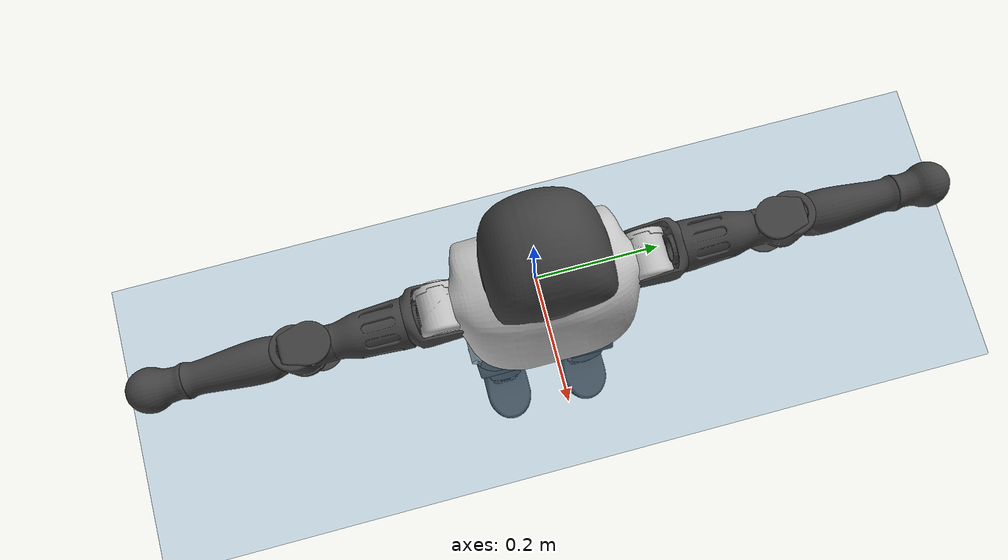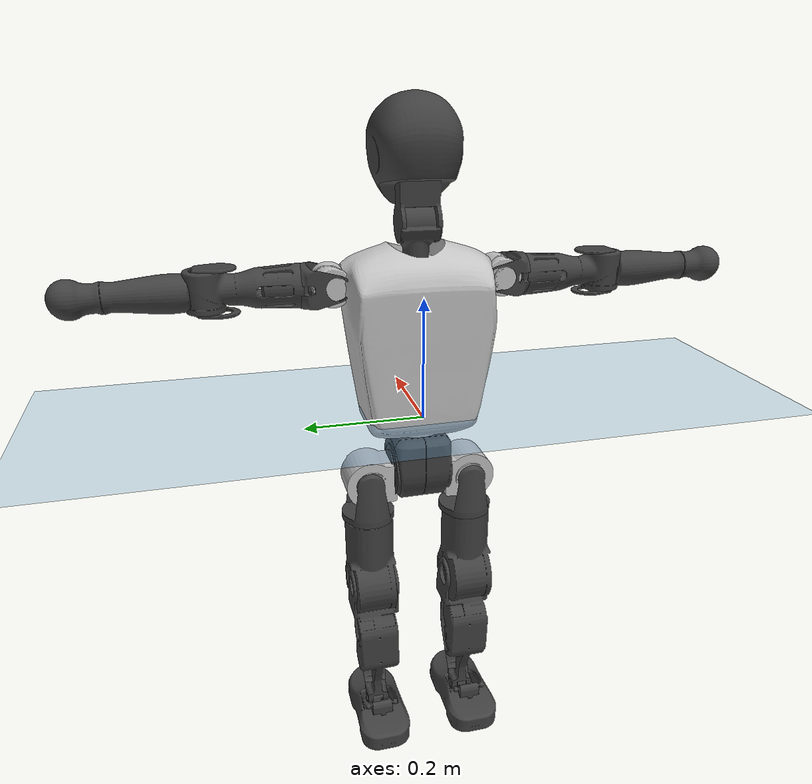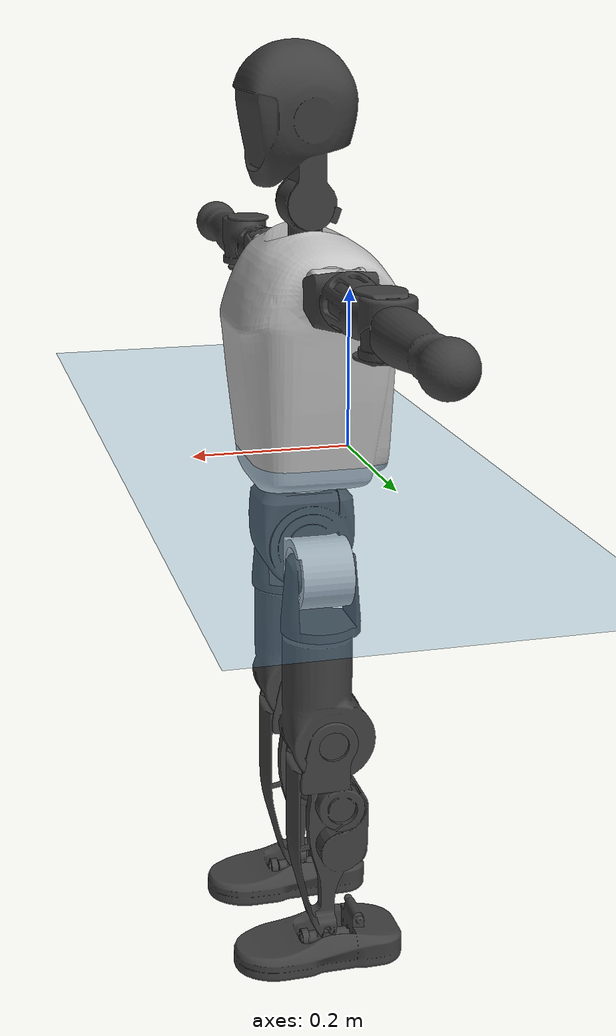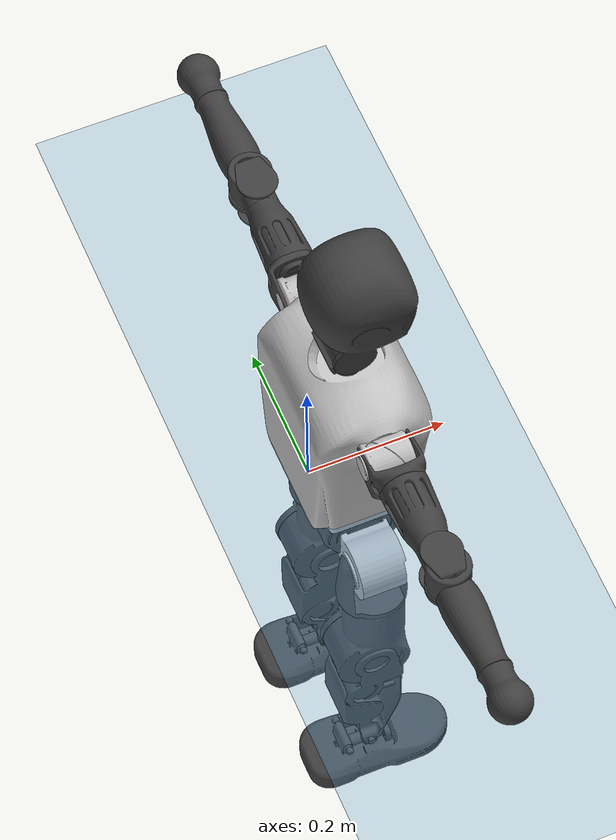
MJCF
<mujoco model="T1">
  <compiler angle="radian" assetdir="assets" balanceinertia="true" inertiafromgeom="false"/>

  <option timestep="0.005" density="1.2" viscosity="2e-05"/>

  <size nkey="1"/>

  <visual>
    <quality shadowsize="8192"/>
    <map shadowclip="0.5"/>
  </visual>

  <default>
    <default class="/">
      <joint armature="0.01" damping="0.01" frictionloss="0.1"/>
      <geom contype="0" conaffinity="0" group="1" solref="-1000 -80"/>
      <site size="0.01 0.005 0.005" group="5"/>
      <general forcelimited="true" biastype="affine" gainprm="25" biasprm="0 -25 -0.6"/>
      <default class="t1">
        <geom rgba="0.25 0.25 0.25 1"/>
        <default class="visual">
          <geom type="mesh" group="2"/>
        </default>
        <default class="collision">
          <geom group="3"/>
        </default>
        <default class="foot">
          <geom size="0.1115 0.05 0.015" type="box" condim="6" group="4" priority="1" solimp="0.015 1 0.015"/>
        </default>
        <default class="reward_collision_sphere">
          <geom group="5" rgba="1 0 0 1"/>
        </default>
      </default>
    </default>
  </default>

  <asset>
    <texture type="skybox" colorspace="auto" name="//unnamed_texture_0" builtin="gradient" rgb1="0.95 0.95 0.95" rgb2="0.95 0.95 0.95" width="100" height="600"/>
    <texture type="2d" colorspace="auto" name="texplane" builtin="checker" rgb1="0.345 0.575 0.748" rgb2="0.345 0.575 0.748" markrgb="1 1 1" width="512" height="512"/>
    <material name="MatPlane" class="/" texture="texplane" texuniform="true" texrepeat="2 2" specular="0.9"/>
    <mesh name="Trunk" class="/" file="Trunk.stl"/>
    <mesh name="H1" class="/" file="H1.stl"/>
    <mesh name="H2" class="/" file="H2.stl"/>
    <mesh name="AL1" class="/" file="AL1.stl"/>
    <mesh name="AL2" class="/" file="AL2.stl"/>
    <mesh name="AL3" class="/" file="AL3.stl"/>
    <mesh name="left_hand_link" class="/" file="left_hand_link.stl"/>
    <mesh name="AR1" class="/" file="AR1.stl"/>
    <mesh name="AR2" class="/" file="AR2.stl"/>
    <mesh name="AR3" class="/" file="AR3.stl"/>
    <mesh name="right_hand_link" class="/" file="right_hand_link.stl"/>
    <mesh name="Waist" class="/" file="Waist.stl"/>
    <mesh name="Hip_Pitch_Left" class="/" file="Hip_Pitch_Left.stl"/>
    <mesh name="Hip_Roll_Left" class="/" file="Hip_Roll_Left.stl"/>
    <mesh name="Hip_Yaw_Left" class="/" file="Hip_Yaw_Left.stl"/>
    <mesh name="Shank_Left" class="/" file="Shank_Left.stl"/>
    <mesh name="Ankle_Cross_Left" class="/" file="Ankle_Cross_Left.stl"/>
    <mesh name="left_foot_link" class="/" file="left_foot_link.stl"/>
    <mesh name="Hip_Pitch_Right" class="/" file="Hip_Pitch_Right.stl"/>
    <mesh name="Hip_Roll_Right" class="/" file="Hip_Roll_Right.stl"/>
    <mesh name="Hip_Yaw_Right" class="/" file="Hip_Yaw_Right.stl"/>
    <mesh name="Shank_Right" class="/" file="Shank_Right.stl"/>
    <mesh name="Ankle_Cross_Right" class="/" file="Ankle_Cross_Right.stl"/>
    <mesh name="right_foot_link" class="/" file="right_foot_link.stl"/>
  </asset>

  <worldbody>
    <geom name="floor" class="/" size="100 100 0.125" type="plane" group="0" material="MatPlane"/>
    <light name="toplight_shadow" class="/" pos="0 0 5" dir="0.0990148 0.0990148 -0.990148" type="directional" ambient="0.04 0.04 0.04" diffuse="0.55 0.55 0.55" specular="0.12 0.12 0.12"/>
    <light name="toplight_fill" class="/" pos="0 0 5" dir="0.0990148 0.0990148 -0.990148" type="directional" castshadow="false" ambient="0.04 0.04 0.04" diffuse="0.3 0.3 0.3" specular="0.08 0.08 0.08"/>
    <body name="trunk" childclass="t1" pos="-0.000144233 -0.00122132 -0.000129383" quat="0.999999 -0.000955557 -0.000310105 0.000720131">
      <inertial pos="0.0521762 -0.000986324 0.106004" quat="0.999977 -0.00442042 0.00157996 -0.00480741" mass="9.71432" diaginertia="0.0803607 0.0349125 0.0608028"/>
      <joint name="//unnamed_joint_0" type="free" armature="0" damping="0" frictionloss="0"/>
      <geom name="//unnamed_geom_1" class="visual" rgba="0.76 0.76 0.76 1" mesh="Trunk"/>
      <geom name="//unnamed_geom_2" class="collision" size="0.0707683 0.0943577 0.141537" pos="0.0577764 0 0.121468" type="box"/>
      <geom name="//unnamed_geom_3" class="reward_collision_sphere" size="0.108511" pos="0.0577764 0 0.101223"/>
      <geom name="//unnamed_geom_4" class="reward_collision_sphere" size="0.0141537" pos="0.0577764 0.0727224 0"/>
      <geom name="//unnamed_geom_5" class="reward_collision_sphere" size="0.0141537" pos="0.0577764 -0.0727224 0"/>
      <geom name="//unnamed_geom_6" class="reward_collision_sphere" size="0.0141537" pos="0.0577764 0.0915447 0.182202"/>
      <geom name="//unnamed_geom_7" class="reward_collision_sphere" size="0.0141537" pos="0.0577764 -0.0915447 0.182202"/>
      <site name="imu" pos="0.0118447 0.000475192 -0.0115723" size="0.00943577"/>
      <camera name="track" pos="0 -1.71112 0" quat="0.707107 0.707107 0 0" mode="trackcom"/>
      <camera name="ego_camera" pos="0.117479 0 0.425138" quat="-0.5 -0.5 0.5 0.5"/>
      <body name="H1" pos="0.0567843 -3.33433e-05 0.243305" quat="1 -8.10481e-06 -4.17558e-05 0.000116178">
        <inertial pos="-0.00133221 -0.00108884 0.0581371" quat="0.763439 -0.0147681 5.4953e-05 0.645711" mass="0.367484" diaginertia="0.000194486 0.000101182 0.000158485"/>
        <joint name="AAHead_yaw" pos="0 0 0" axis="0.00367641 0.00351218 0.999987" stiffness="0.0040148" range="-1.52088 1.57607" armature="0.0107188" damping="0.00720482" frictionloss="0.107308"/>
        <geom name="//unnamed_geom_8" class="visual" mesh="H1"/>
        <body name="H2" pos="-0.0017529 -0.00253937 0.06342" quat="1 -0.000145857 5.7597e-05 -4.75175e-05">
          <inertial pos="0.00929469 -0.00224742 0.0972982" quat="0.98799 0.105977 -0.0863507 -0.0720314" mass="0.535088" diaginertia="0.00166873 0.000854208 0.00183035"/>
          <joint name="Head_pitch" pos="0 0 0" axis="0.00196058 -0.999997 -0.00140756" range="-1.22989 0.365979" armature="0.0103008" damping="0" frictionloss="0.0900415"/>
          <geom name="//unnamed_geom_9" class="visual" mesh="H2"/>
          <geom name="//unnamed_geom_10" class="collision" size="0.0754861" pos="0.0096294 0 0.111346"/>
          <geom name="//unnamed_geom_11" class="reward_collision_sphere" size="0.0849219" pos="0.0192588 0 0.101223"/>
        </body>
      </body>
      <body name="AL1" pos="0.0554144 0.0918064 0.219136" quat="0.999999 0.000552924 -0.000724871 -0.000493385">
        <inertial pos="-0.00316657 0.0379503 2.40695e-05" quat="0.503873 0.495985 -0.504998 0.495063" mass="0.438074" diaginertia="0.00111413 0.000563484 0.000295352"/>
        <joint name="Left_Shoulder_Pitch" pos="0 0 0" axis="-0.0113591 0.999879 -0.0106719" stiffness="0.00132456" range="-3.33569 1.275" armature="0.00953269" damping="0" frictionloss="0.100642"/>
        <geom name="//unnamed_geom_12" class="visual" rgba="0.76 0.76 0.76 1" mesh="AL1"/>
        <body name="AL2" pos="-0.00140642 0.0410669 -0.000101003" quat="1 3.15293e-05 0.000128011 -5.98075e-05">
          <inertial pos="0.00327849 0.0352426 -0.00142674" quat="0.491234 0.509721 -0.489927 0.508768" mass="0.138408" diaginertia="0.000341833 0.000159935 0.000188507"/>
          <joint name="Left_Shoulder_Roll" pos="0 0 0" axis="-0.999999 -0.000141667 -0.00126122" range="-1.55087 1.74557" armature="0.0107545" damping="0.00750552" frictionloss="0.0951132"/>
          <geom name="//unnamed_geom_13" class="visual" mesh="AL2"/>
          <body name="AL3" pos="0.000770746 0.0514284 0.0013106" quat="1 -0.000432433 -0.00018053 3.08039e-05">
            <inertial pos="0.00232313 0.0703112 -0.000384614" quat="0.708956 0.705219 -0.00237516 -0.00647645" mass="0.801509" diaginertia="0.0106639 0.00571261 0.000618493"/>
            <joint name="Left_Elbow_Pitch" pos="0 0 0" axis="-0.00297115 -0.999987 0.0042255" range="-2.32619 2.26062" armature="0.0105457" damping="0.0153488" frictionloss="0.0921399"/>
            <geom name="//unnamed_geom_14" class="visual" mesh="AL3"/>
            <geom name="//unnamed_geom_15" class="collision" size="0.0283073 0.0707683" pos="0 0.0427779 0" quat="0.707105 0.707108 0 0" type="cylinder"/>
            <geom name="//unnamed_geom_16" class="reward_collision_sphere" size="0.0339688"/>
            <body name="left_hand_link" pos="0.0015414 0.124847 -0.00149167" quat="0.999999 0.000513912 -0.0011216 -0.000437043">
              <inertial pos="-0.00269178 0.0945109 0.000818277" quat="0.710765 0.703428 0.000810301 0.000943169" mass="0.273623" diaginertia="0.00652126 0.00374999 0.000236302"/>
              <joint name="Left_Elbow_Yaw" pos="0 0 0" axis="0.000568586 -0.00677689 0.999977" range="-2.44797 -0.0472122" armature="0.00989667" damping="0.0164101" frictionloss="0.0968923"/>
              <geom name="//unnamed_geom_17" class="visual" mesh="left_hand_link"/>
              <geom name="//unnamed_geom_18" class="collision" size="0.0283073 0.082563" pos="0 0.111222 0" quat="0.707105 0.707108 0 0" type="cylinder"/>
              <geom name="//unnamed_geom_19" class="reward_collision_sphere" size="0.0471788"/>
              <geom name="//unnamed_geom_20" class="reward_collision_sphere" size="0.0330252" pos="0 0.0941113 0"/>
              <geom name="//unnamed_geom_21" class="reward_collision_sphere" size="0.0330252" pos="0 0.183945 0"/>
            </body>
          </body>
        </body>
      </body>
      <body name="AR1" pos="0.0551811 -0.0927433 0.219707" quat="1 -1.49102e-06 0.000437064 2.70582e-06">
        <inertial pos="-0.0026965 -0.0410461 0.000756234" quat="0.503653 0.500713 -0.496989 0.498621" mass="0.427998" diaginertia="0.00107901 0.000572021 0.000301913"/>
        <joint name="Right_Shoulder_Pitch" pos="0 0 0" axis="-0.0115393 -0.999857 -0.0123454" range="-1.21894 3.28332" armature="0.0107219" damping="0.0098647" frictionloss="0.0896796"/>
        <geom name="//unnamed_geom_22" class="visual" rgba="0.76 0.76 0.76 1" mesh="AR1"/>
        <body name="AR2" pos="0.0021814 -0.0368944 -0.00171671" quat="0.999999 0.000717776 0.000994669 0.000860155">
          <inertial pos="0.00184205 -0.0325328 0.000996027" quat="0.509299 0.490233 -0.510697 0.489361" mass="0.12961" diaginertia="0.000331496 0.000163552 0.000189675"/>
          <joint name="Right_Shoulder_Roll" pos="0 0 0" axis="-0.999985 -0.0048915 -0.00254352" stiffness="0.000116705" range="-1.7365 1.57022" armature="0.00942023" damping="0.00849418" frictionloss="0.105565"/>
          <geom name="//unnamed_geom_23" class="visual" mesh="AR2"/>
          <body name="AR3" pos="0.00151072 -0.052312 -0.00225769" quat="1 3.79724e-06 3.55635e-05 -2.58669e-05">
            <inertial pos="-0.000268155 -0.0758874 -0.000267049" quat="0.715815 0.698248 -0.0076319 -0.000382373" mass="0.855011" diaginertia="0.0106565 0.00592286 0.000681471"/>
            <joint name="Right_Elbow_Pitch" pos="0 0 0" axis="-0.0123112 0.999912 0.00484678" range="-2.32508 2.2349" armature="0.00801934" damping="0.00550789" frictionloss="0.10412"/>
            <geom name="//unnamed_geom_24" class="visual" mesh="AR3"/>
            <geom name="//unnamed_geom_25" class="collision" size="0.0283073 0.0707683" pos="0 -0.0427779 0" quat="0.707105 0.707108 0 0" type="cylinder"/>
            <geom name="//unnamed_geom_26" class="reward_collision_sphere" size="0.0339688"/>
            <body name="right_hand_link" pos="-0.000615651 -0.125919 -0.00102527" quat="0.999999 -0.000625269 -0.000744311 0.000797589">
              <inertial pos="-0.000524384 -0.0946857 0.00370678" quat="0.706159 0.708053 -0.000113554 0.000425551" mass="0.274922" diaginertia="0.00671351 0.00367171 0.000225806"/>
              <joint name="Right_Elbow_Yaw" pos="0 0 0" axis="-0.0063741 -0.000182068 0.99998" range="-0.00398837 2.48136" armature="0.0108615" damping="0" frictionloss="0.105845"/>
              <geom name="//unnamed_geom_27" class="visual" mesh="right_hand_link"/>
              <geom name="//unnamed_geom_28" class="collision" size="0.0283073 0.082563" pos="0 -0.111222 0" quat="0.707105 0.707108 0 0" type="cylinder"/>
              <geom name="//unnamed_geom_29" class="reward_collision_sphere" size="0.0471788"/>
              <geom name="//unnamed_geom_30" class="reward_collision_sphere" size="0.0330252" pos="0 -0.0941113 0"/>
              <geom name="//unnamed_geom_31" class="reward_collision_sphere" size="0.0330252" pos="0 -0.183945 0"/>
            </body>
          </body>
        </body>
      </body>
      <body name="Waist" pos="0.0605049 -0.00411959 -0.11408" quat="1 -0.000438311 -0.000648048 0.000123057">
        <inertial pos="-0.000204348 0.000215096 0.00634549" quat="0.981281 0.00591396 -0.192477 0.00249918" mass="2.09878" diaginertia="0.00425782 0.00236478 0.00489585"/>
        <joint name="Waist" pos="0 0 0" axis="0.0132696 -6.19416e-05 0.999912" range="-1.59132 1.5151" armature="0.00964998" damping="0.0180027" frictionloss="0.107322"/>
        <geom name="//unnamed_geom_32" class="visual" mesh="Waist"/>
        <body name="Hip_Pitch_Left" pos="0.000401267 0.0919181 0.000220414" quat="1 -0.000159729 -9.30356e-05 0.000250095">
          <inertial pos="0.000871263 -0.00798125 -0.018574" quat="0.975923 0.217774 0.0116623 0.00362553" mass="0.865428" diaginertia="0.00148688 0.000690065 0.00134026"/>
          <joint name="Left_Hip_Pitch" pos="0 0 0" axis="0.0115132 0.999909 -0.00707937" range="-1.81034 1.62339" armature="0.0100483" damping="0" frictionloss="0.0919676"/>
          <geom name="//unnamed_geom_33" class="visual" rgba="0.76 0.76 0.76 1" mesh="Hip_Pitch_Left"/>
          <body name="Hip_Roll_Left" pos="0.00082982 0.00193062 -0.0184018" quat="0.999999 -0.00111024 0.000379863 0.000800968">
            <inertial pos="-0.00159496 0.000234036 -0.0552172" quat="0.706497 -0.00513667 -0.00711992 0.707661" mass="0.317112" diaginertia="0.00144502 0.000675191 0.000530061"/>
            <joint name="Left_Hip_Roll" pos="0 0 0" axis="-0.999942 -0.00526176 -0.00940429" stiffness="0.00780438" range="-1.55682 0.188748" armature="0.00888682" damping="0.0157161" frictionloss="0.0994045"/>
            <geom name="//unnamed_geom_34" class="visual" mesh="Hip_Roll_Left"/>
            <geom name="//unnamed_geom_35" class="reward_collision_sphere" size="0.0518967"/>
            <body name="Hip_Yaw_Left" pos="0.00147079 -0.00104885 -0.0846337" quat="1 -9.47035e-06 4.4374e-05 6.66264e-05">
              <inertial pos="-0.00669796 -0.00148566 -0.0904099" quat="0.706198 -0.0353105 -0.0329034 0.706368" mass="1.74473" diaginertia="0.0212581 0.0113436 0.00265785"/>
              <joint name="Left_Hip_Yaw" pos="0 0 0" axis="0.000555453 0.00377698 -0.999993" range="-1.06028 1.00166" armature="0.0093918" damping="0.0132744" frictionloss="0.092289"/>
              <geom name="//unnamed_geom_36" class="visual" mesh="Hip_Yaw_Left"/>
              <geom name="//unnamed_geom_37" class="collision" size="0.0471788 0.0754861" type="cylinder"/>
              <body name="Shank_Left" pos="-0.0123564 -0.00268423 -0.137427" quat="1 0.000362826 8.63222e-05 0.000352723">
                <inertial pos="-0.00588935 -0.00188223 -0.125493" quat="0.997997 0.000375277 -0.031923 0.0546117" mass="1.515" diaginertia="0.029336 0.0160793 0.00195046"/>
                <joint name="Left_Knee_Pitch" pos="0 0 0" axis="-0.00313631 0.99999 -0.00326373" range="-0.00409875 2.31373" armature="0.0107273" damping="0" frictionloss="0.0985818"/>
                <geom name="//unnamed_geom_38" class="visual" mesh="Shank_Left"/>
                <geom name="//unnamed_geom_39" class="collision" size="0.0471788 0.0707683" pos="0 0 -0.121468" type="cylinder"/>
                <geom name="//unnamed_geom_40" class="reward_collision_sphere" size="0.0613325"/>
                <body name="Ankle_Cross_Left" pos="0.00220065 0.00217611 -0.28667" quat="0.999999 -0.00105682 0.000888205 0.000197525">
                  <inertial pos="-0.00442922 -0.0022411 -0.00729917" quat="0.434798 0.54835 0.560045 0.44341" mass="0.0611547" diaginertia="2.37357e-05 1.21012e-05 1.23358e-05"/>
                  <joint name="Left_Ankle_Pitch" pos="0 0 0" axis="-0.00738562 0.999947 0.00720708" range="-0.887119 0.340872" armature="0.00944934" damping="0.00722958" frictionloss="0.0924622"/>
                  <geom name="//unnamed_geom_41" class="visual" mesh="Ankle_Cross_Left"/>
                  <body name="left_foot_link" pos="-0.00271636 -0.00288778 -0.0123689" quat="1 -0.000181957 -0.000158285 0.000281574">
                    <inertial pos="0.00243716 0.000463634 -0.00672974" quat="0.00229043 0.618006 0.000902776 0.78617" mass="0.578883" diaginertia="0.00228746 0.00109073 0.00234428"/>
                    <joint name="Left_Ankle_Roll" pos="0 0 0" axis="-0.999996 -0.00109753 -0.00260854" stiffness="0.00694819" range="-0.451408 0.439131" armature="0.00800249" damping="0" frictionloss="0.0920731"/>
                    <geom name="//unnamed_geom_42" class="visual" mesh="left_foot_link"/>
                    <geom name="left_foot" class="foot" size="0.094938 0.045246 0.0137601" pos="0.0096294 0 -0.0151835"/>
                    <geom name="//unnamed_geom_44" class="reward_collision_sphere" size="0.049066" pos="0.0096294 0 -0.0151835"/>
                    <geom name="//unnamed_geom_45" class="reward_collision_sphere" size="0.0283073" pos="0.0914793 -0.0196778 -0.0151835"/>
                    <geom name="//unnamed_geom_46" class="reward_collision_sphere" size="0.0283073" pos="-0.0674058 -0.0196778 -0.0151835"/>
                    <site name="left_foot" class="foot" pos="0.0096294 0 -0.0151835" size="0.00943577"/>
                  </body>
                </body>
              </body>
            </body>
          </body>
        </body>
        <body name="Hip_Pitch_Right" pos="-0.00299842 -0.0887903 -0.00167705" quat="0.999999 0.00113536 -0.000231129 -0.00069931">
          <inertial pos="0.00147834 0.00419854 -0.0182325" quat="0.975262 -0.220719 0.0108012 -0.00547858" mass="0.84854" diaginertia="0.00144574 0.000648944 0.00128559"/>
          <joint name="Right_Hip_Pitch" pos="0 0 0" axis="-0.00401754 -0.999988 0.00293411" range="-1.62044 1.78764" armature="0.00893455" damping="0.0100998" frictionloss="0.10678"/>
          <geom name="//unnamed_geom_47" class="visual" rgba="0.76 0.76 0.76 1" mesh="Hip_Pitch_Right"/>
          <body name="Hip_Roll_Right" pos="-0.0011284 -0.00067764 -0.020462" quat="1 0.000327057 -0.000367416 -0.000327464">
            <inertial pos="-0.00160481 0.00244318 -0.0569396" quat="0.706947 -0.00337381 -0.00337736 0.707251" mass="0.330759" diaginertia="0.00149204 0.000697788 0.000547914"/>
            <joint name="Right_Hip_Roll" pos="0 0 0" axis="-0.999982 -0.00486545 0.00352561" stiffness="0.000133565" range="-0.196673 1.57626" armature="0.00977916" damping="0.00464694" frictionloss="0.0904672"/>
            <geom name="//unnamed_geom_48" class="visual" mesh="Hip_Roll_Right"/>
            <geom name="//unnamed_geom_49" class="reward_collision_sphere" size="0.0518967"/>
            <body name="Hip_Yaw_Right" pos="-0.000448227 -0.00265255 -0.0817016" quat="1 2.20523e-06 3.46384e-06 -1.08379e-05">
              <inertial pos="-0.00482934 -0.00209618 -0.0913142" quat="0.714453 -0.0313068 -0.0333244 0.698188" mass="1.8183" diaginertia="0.0220951 0.0115602 0.00278488"/>
              <joint name="Right_Hip_Yaw" pos="0 0 0" axis="-0.00310653 0.00123343 -0.999994" stiffness="0.00290109" range="-0.981088 0.946537" armature="0.00836786" damping="0.0213378" frictionloss="0.107201"/>
              <geom name="//unnamed_geom_50" class="visual" mesh="Hip_Yaw_Right"/>
              <geom name="//unnamed_geom_51" class="collision" size="0.0471788 0.0754861" type="cylinder"/>
              <body name="Shank_Right" pos="-0.0117364 0.00235605 -0.135553" quat="0.999999 0.000613817 -0.000706677 -0.00101332">
                <inertial pos="-0.00562953 0.00260917 -0.121568" quat="0.999102 0.00775433 -0.0315324 -0.0272137" mass="1.45521" diaginertia="0.028496 0.0160826 0.00215204"/>
                <joint name="Right_Knee_Pitch" pos="0 0 0" axis="0.00234807 -0.999996 0.00136084" range="-2.28421 -0.0614792" armature="0.00991718" damping="0.0179971" frictionloss="0.0936245"/>
                <geom name="//unnamed_geom_52" class="visual" mesh="Shank_Right"/>
                <geom name="//unnamed_geom_53" class="collision" size="0.0471788 0.0707683" pos="0 0 -0.121468" type="cylinder"/>
                <geom name="//unnamed_geom_54" class="reward_collision_sphere" size="0.0613325"/>
                <body name="Ankle_Cross_Right" pos="0.00240736 -0.00324136 -0.283822" quat="0.999999 0.00091764 0.00058762 -0.000423283">
                  <inertial pos="-0.00368517 0.000443356 -0.0055897" quat="0.442649 0.553646 0.553718 0.436961" mass="0.0614691" diaginertia="2.37794e-05 1.17371e-05 1.16406e-05"/>
                  <joint name="Right_Ankle_Pitch" pos="0 0 0" axis="-0.00238189 -0.999992 0.00328778" range="-0.404931 0.865853" armature="0.00938513" damping="0.00548197" frictionloss="0.0989317"/>
                  <geom name="//unnamed_geom_55" class="visual" mesh="Ankle_Cross_Right"/>
                  <body name="right_foot_link" pos="0.000763573 -0.00334788 -0.0130046" quat="1 -0.000129136 -0.000289874 0.000152356">
                    <inertial pos="0.000151482 -0.000387106 -0.0119226" quat="-0.00046399 0.619446 -0.00393526 0.785029" mass="0.576001" diaginertia="0.00222011 0.00109437 0.00225547"/>
                    <joint name="Right_Ankle_Roll" pos="0 0 0" axis="-0.999958 -0.00603679 -0.00690381" range="-0.3928 0.43662" armature="0.0107472" damping="0.00778391" frictionloss="0.0832299"/>
                    <geom name="//unnamed_geom_56" class="visual" mesh="right_foot_link"/>
                    <geom name="right_foot" class="foot" size="0.0775362 0.0439651 0.0133086" pos="0.0096294 0 -0.0151835"/>
                    <geom name="//unnamed_geom_58" class="reward_collision_sphere" size="0.0377431"/>
                    <geom name="//unnamed_geom_59" class="reward_collision_sphere" size="0.0283073" pos="0.0096294 0 -0.0151835"/>
                    <geom name="//unnamed_geom_60" class="reward_collision_sphere" size="0.0283073" pos="0.0914793 0.0196778 -0.0151835"/>
                    <geom name="//unnamed_geom_61" class="reward_collision_sphere" size="0.0283073" pos="-0.0674058 0.0196778 -0.0151835"/>
                    <site name="right_foot" class="foot" pos="0.0096294 0 -0.0151835" size="0.00943577"/>
                  </body>
                </body>
              </body>
            </body>
          </body>
        </body>
      </body>
    </body>
  </worldbody>

  <contact>
    <pair class="/" geom1="floor" geom2="left_foot" name="//unnamed_contact_0"/>
    <pair class="/" geom1="floor" geom2="right_foot" name="//unnamed_contact_1"/>
  </contact>

  <actuator>
    <general name="AAHead_yaw" class="/" joint="AAHead_yaw" forcerange="-6.19743 6.19743" gainprm="23.7977" biasprm="0 -23.7977 -0.560037"/>
    <general name="Head_pitch" class="/" joint="Head_pitch" forcerange="-7.16735 7.16735" gainprm="23.7977" biasprm="0 -23.7977 -0.560037"/>
    <general name="Left_Shoulder_Pitch" class="/" joint="Left_Shoulder_Pitch" forcerange="-17.6943 17.6943" gainprm="23.7977" biasprm="0 -23.7977 -0.560037"/>
    <general name="Left_Shoulder_Roll" class="/" joint="Left_Shoulder_Roll" forcerange="-18.638 18.638" gainprm="23.7977" biasprm="0 -23.7977 -0.560037"/>
    <general name="Left_Elbow_Pitch" class="/" joint="Left_Elbow_Pitch" forcerange="-17.2768 17.2768" gainprm="23.7977" biasprm="0 -23.7977 -0.560037"/>
    <general name="Left_Elbow_Yaw" class="/" joint="Left_Elbow_Yaw" forcerange="-17.5577 17.5577" gainprm="23.7977" biasprm="0 -23.7977 -0.560037"/>
    <general name="Right_Shoulder_Pitch" class="/" joint="Right_Shoulder_Pitch" forcerange="-17.1665 17.1665" gainprm="23.7977" biasprm="0 -23.7977 -0.560037"/>
    <general name="Right_Shoulder_Roll" class="/" joint="Right_Shoulder_Roll" forcerange="-17.1107 17.1107" gainprm="23.7977" biasprm="0 -23.7977 -0.560037"/>
    <general name="Right_Elbow_Pitch" class="/" joint="Right_Elbow_Pitch" forcerange="-16.4125 16.4125" gainprm="23.7977" biasprm="0 -23.7977 -0.560037"/>
    <general name="Right_Elbow_Yaw" class="/" joint="Right_Elbow_Yaw" forcerange="-17.5655 17.5655" gainprm="23.7977" biasprm="0 -23.7977 -0.560037"/>
    <general name="Waist" class="/" joint="Waist" forcerange="-25.6545 25.6545" gainprm="23.7977" biasprm="0 -23.7977 -0.560037"/>
    <general name="Left_Hip_Pitch" class="/" joint="Left_Hip_Pitch" forcerange="-42.8872 42.8872" gainprm="23.7977" biasprm="0 -23.7977 -0.560037"/>
    <general name="Left_Hip_Roll" class="/" joint="Left_Hip_Roll" forcerange="-27.7346 27.7346" gainprm="23.7977" biasprm="0 -23.7977 -0.560037"/>
    <general name="Left_Hip_Yaw" class="/" joint="Left_Hip_Yaw" forcerange="-29.4357 29.4357" gainprm="23.7977" biasprm="0 -23.7977 -0.560037"/>
    <general name="Left_Knee_Pitch" class="/" joint="Left_Knee_Pitch" forcerange="-50.5946 50.5946" gainprm="23.7977" biasprm="0 -23.7977 -0.560037"/>
    <general name="Left_Ankle_Pitch" class="/" joint="Left_Ankle_Pitch" forcerange="-20.6743 20.6743" gainprm="23.7977" biasprm="0 -23.7977 -0.560037"/>
    <general name="Left_Ankle_Roll" class="/" joint="Left_Ankle_Roll" forcerange="-12.9388 12.9388" gainprm="23.7977" biasprm="0 -23.7977 -0.560037"/>
    <general name="Right_Hip_Pitch" class="/" joint="Right_Hip_Pitch" forcerange="-41.988 41.988" gainprm="23.7977" biasprm="0 -23.7977 -0.560037"/>
    <general name="Right_Hip_Roll" class="/" joint="Right_Hip_Roll" forcerange="-25.4313 25.4313" gainprm="23.7977" biasprm="0 -23.7977 -0.560037"/>
    <general name="Right_Hip_Yaw" class="/" joint="Right_Hip_Yaw" forcerange="-31.2292 31.2292" gainprm="23.7977" biasprm="0 -23.7977 -0.560037"/>
    <general name="Right_Knee_Pitch" class="/" joint="Right_Knee_Pitch" forcerange="-55.2217 55.2217" gainprm="23.7977" biasprm="0 -23.7977 -0.560037"/>
    <general name="Right_Ankle_Pitch" class="/" joint="Right_Ankle_Pitch" forcerange="-19.1281 19.1281" gainprm="23.7977" biasprm="0 -23.7977 -0.560037"/>
    <general name="Right_Ankle_Roll" class="/" joint="Right_Ankle_Roll" forcerange="-14.1852 14.1852" gainprm="23.7977" biasprm="0 -23.7977 -0.560037"/>
  </actuator>

  <sensor>
    <gyro site="imu" name="imu_angular_velocity"/>
    <velocimeter site="imu" name="imu_linear_velocity"/>
    <framelinvel objtype="site" objname="left_foot" name="left_foot_global_linear_velocity"/>
    <framelinvel objtype="site" objname="right_foot" name="right_foot_global_linear_velocity"/>
  </sensor>

  <keyframe>
    <key name="home" qpos="0 0 0.6385 1 0 0 0 0 0 0 1.4 0 -0.4 0 -1.4 0 0.4 0 -0.4 0 0 0.8 -0.4 0 0.4 0 0 -0.8 0.4 0"/>
  </keyframe>
</mujoco>
